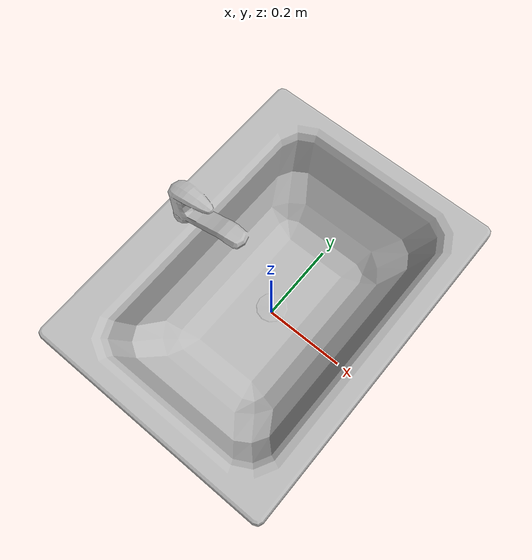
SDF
<?xml version='1.0'?>
<sdf version='1.4'>
  <model name='79'>
    <pose>0 0 0 0 0 0</pose>
    <static>true</static>
    <link name='link'>
      <collision name='collision'>
        <pose>0 0 0 0 0 0</pose>
        <geometry>
          <box>
            <size>0.6 0.8 2</size>
          </box>
        </geometry>
      </collision>
      <visual name='visual'>
        <pose>0 0 0 0 0 0</pose>
        <geometry>
          <mesh><uri>model://79/79.dae</uri></mesh>
        </geometry>
      </visual>
    </link>
  </model>
</sdf>
